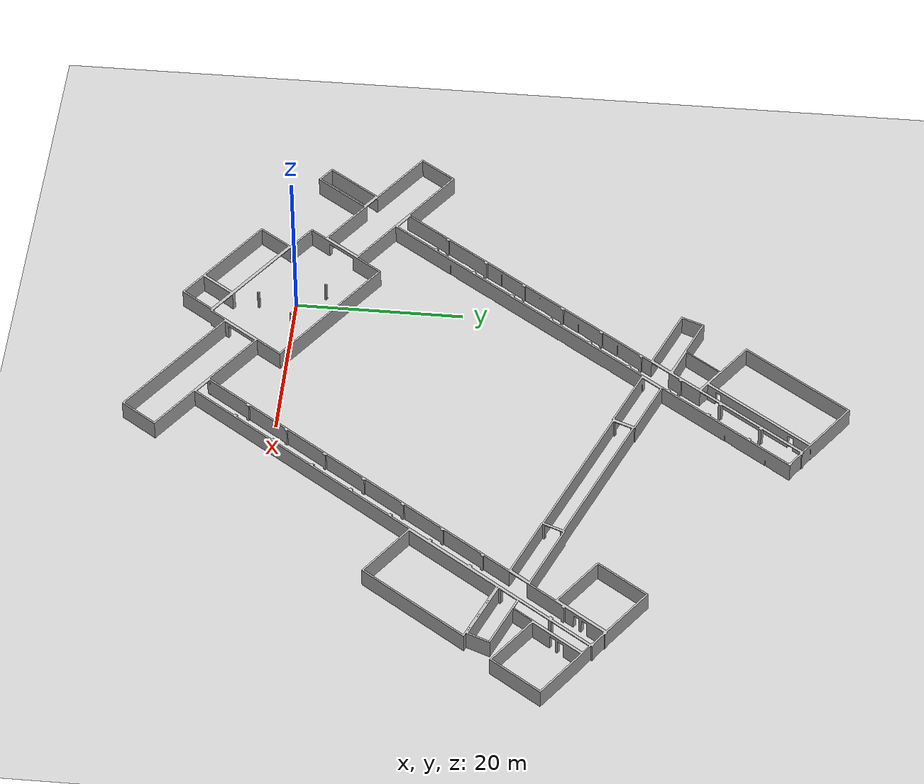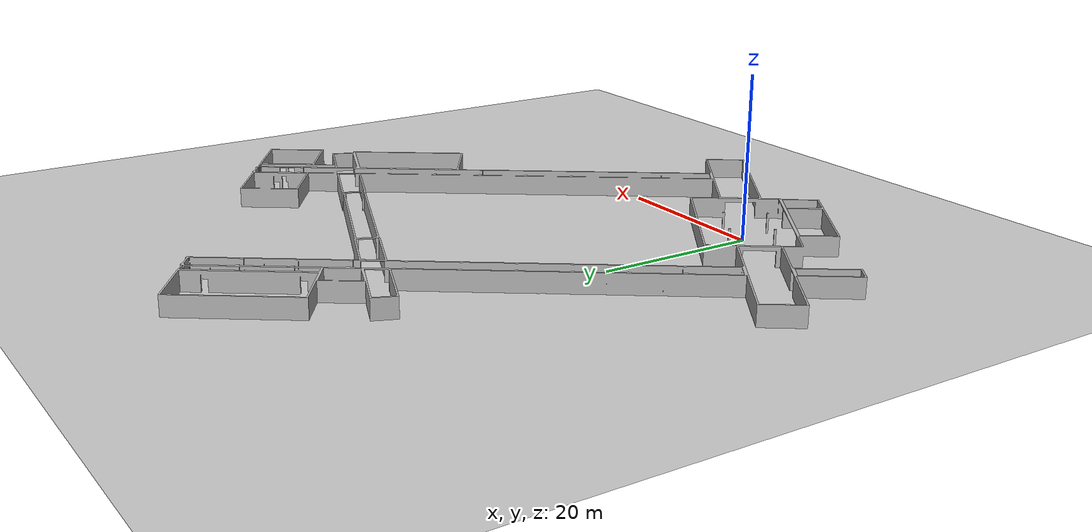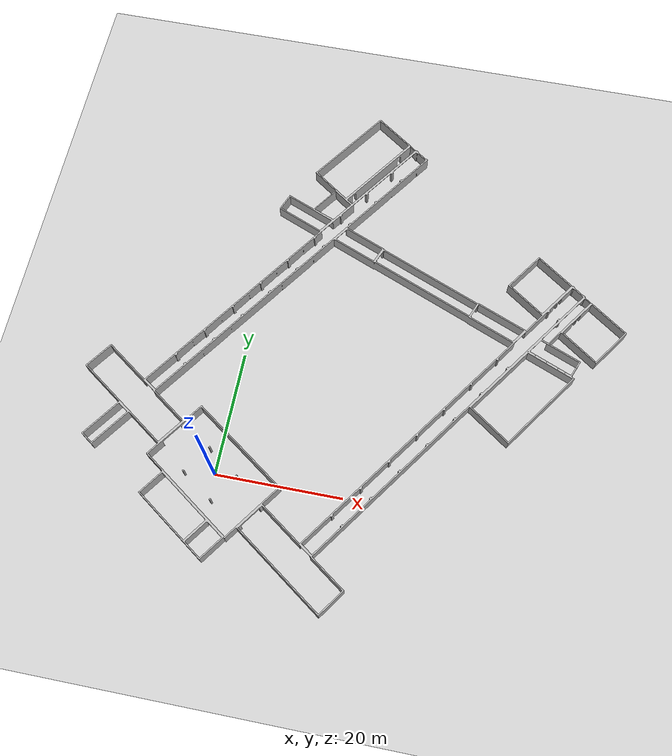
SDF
<?xml version='1.0' encoding='utf-8'?>
<sdf version="1.6">
  <world name="icra_brsu_building_c_level_2_map">
    <gravity>0 0 -9.8</gravity>
    <physics default="0" name="default_physics" type="ode">
      <max_step_size>0.001</max_step_size>
      <real_time_factor>1</real_time_factor>
      <real_time_update_rate>1000</real_time_update_rate>
    </physics>
    <scene>
      <ambient>0.6 0.6 0.6 1</ambient>
      <background>0.4 0.4 0.4 1</background>
      <shadows>false</shadows>
    </scene>
    <include>
      <uri>model://sun</uri>
    </include>
    <include>
      <uri>model://ground_plane</uri>
      <pose>0 0 0 0 0 0</pose>
    </include>
    <include>
      <uri>model://icra_brsu_building_c_level_2_map</uri>
      <static>true</static>
      <pose>-0.0 0.0 0.0 0.0 0.0 0.0</pose>
    </include>

    <include>
      <name>door-instance-1</name>
      <uri>model://door</uri>
      <static>false</static>
      <pose>-6.473424848058973 18.693726106277825 0.0 0.0 -0.0 2.5307274153917785</pose>

    </include>

    <include>
      <name>door-instance-6</name>
      <uri>model://door</uri>
      <static>false</static>
      <pose>7.292409624366113 38.35337516921366 0.0 0.0 -0.0 2.5307274153917785</pose>

    </include>

    <include>
      <name>door-instance-7</name>
      <uri>model://door</uri>
      <static>false</static>
      <pose>1.3048666475818336 34.07372225090811 0.0 0.0 -0.0 -0.610865238198015</pose>

    </include>

    <include>
      <name>door-instance-8</name>
      <uri>model://door</uri>
      <static>false</static>
      <pose>-2.136591970524434 29.15880998517416 0.0 0.0 -0.0 -0.610865238198015</pose>

    </include>

    <include>
      <name>door-instance-4</name>
      <uri>model://door</uri>
      <static>false</static>
      <pose>17.731500765955143 53.26194237527334 0.0 0.0 -0.0 2.5307274153917785</pose>

    </include>

    <include>
      <name>door-instance-5</name>
      <uri>model://door</uri>
      <static>false</static>
      <pose>21.172959384061418 58.1768546410073 0.0 0.0 -0.0 2.5307274153917785</pose>

    </include>

    <include>
      <name>door-instance-9</name>
      <uri>model://door</uri>
      <static>false</static>
      <pose>-5.578050588630709 24.24389771944019 0.0 0.0 -0.0 -0.610865238198015</pose>

    </include>

    <include>
      <name>door-instance-2</name>
      <uri>model://door</uri>
      <static>false</static>
      <pose>-3.0319662299527006 23.60863837201179 0.0 0.0 -0.0 2.5307274153917785</pose>

    </include>

    <include>
      <name>door-instance-10</name>
      <uri>model://door</uri>
      <static>false</static>
      <pose>-9.019509206736986 19.32898545370624 0.0 0.0 -0.0 -0.610865238198015</pose>

    </include>

    <include>
      <name>door-instance-11</name>
      <uri>model://door</uri>
      <static>false</static>
      <pose>4.746325265688102 38.988634516642065 0.0 0.0 -0.0 -0.610865238198015</pose>

    </include>

    <include>
      <name>door-instance-3</name>
      <uri>model://door</uri>
      <static>false</static>
      <pose>3.2773745699088015 32.61931085919071 0.0 0.0 -0.0 2.5307274153917785</pose>

    </include>

  </world>
</sdf>

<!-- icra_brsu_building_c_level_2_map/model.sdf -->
<sdf version="1.6">
  <model name="icra_brsu_building_c_level_2_map">
    <link name="link">
      <visual name="visual">
	    <geometry>
          <mesh>
            <uri>model://icra_brsu_building_c_level_2_map/meshes/icra_brsu_building_c_level_2_map.stl</uri>
          </mesh>
        </geometry>
      </visual>
      <collision name="collision">
        <geometry>
          <mesh>
            <uri>model://icra_brsu_building_c_level_2_map/meshes/icra_brsu_building_c_level_2_map.stl</uri>
          </mesh>
        </geometry>
      </collision>
    </link>
  <static>1</static>
  </model>
</sdf>

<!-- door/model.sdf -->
<sdf version="1.4">
<model name="door:door">
<pose>0 0 0 0 0 0</pose>
<static>false</static>

<link name="door:door-body">
<pose>0.0 0.49000000000000005 1.0 0.0 -0.0 0.0</pose>
<inertial>
<mass>1.0</mass>
<inertia>
<ixx>0.4069</ixx>
<ixy>0.0</ixy>
<ixz>0.0</ixz>
<iyy>0.3322</iyy>
<iyz>0.0</iyz>
<izz>0.0751</izz>
</inertia>
</inertial>
<collision name="collision">
<geometry>
<box>
<size>0.05 0.93 1.98</size>
</box>
</geometry>
</collision>
<visual name="visual">
<geometry>
<box>
<size>0.05 0.93 1.98</size>
</box>
</geometry><material><script><name>Gazebo/DarkYellow</name></script></material></visual>
</link>

<joint type="revolute" name="door:joint-door-hinge">
<pose frame="door:door-hinge">-0.025 0.025 0.995 0.0 -0.0 0.0</pose>
<child>door:door-body</child>
<parent>door:door-hinge</parent>
<axis>
<xyz>0 0 1</xyz>

<limit>
<lower>0.0</lower>
<upper>2.0</upper>
</limit>

</axis>
</joint>

</model>
</sdf>
